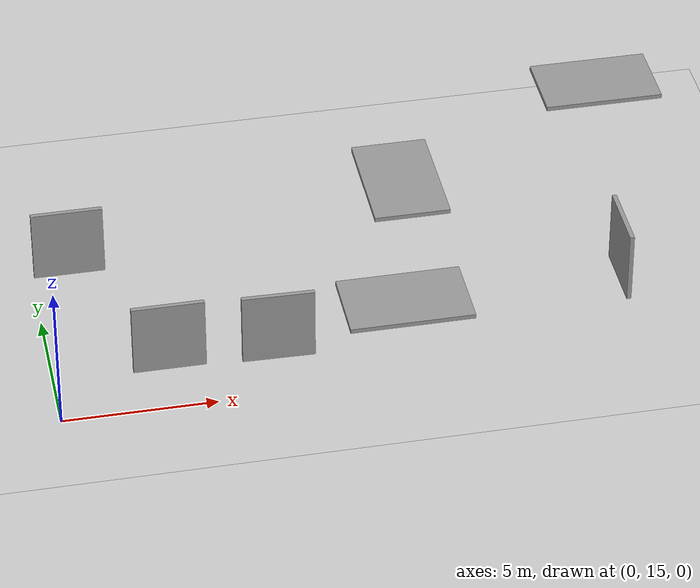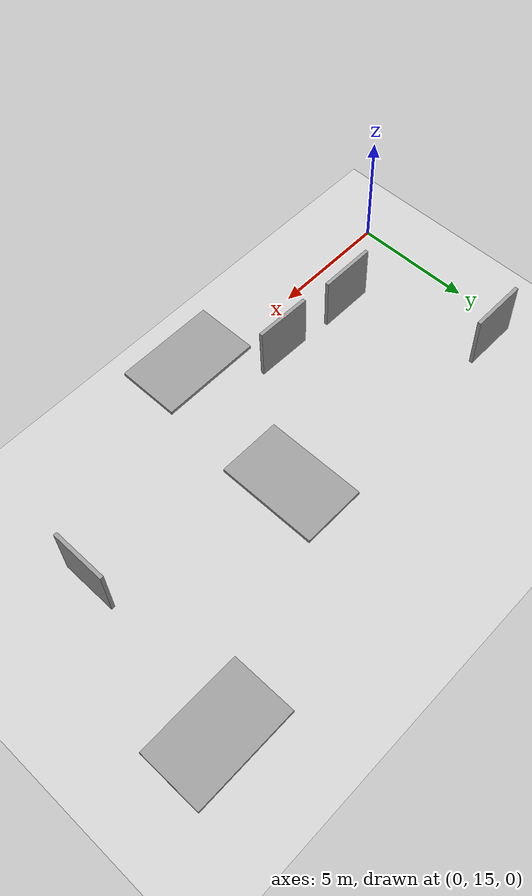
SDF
<sdf version="1.6">
 <world name="default">
  <model name="ground_plane">
   <pose>15 45 0 0 -0 0</pose>
   <static>1</static>
   <link name="link">
    <collision name="collision">
     <geometry><plane><normal>0 0 1</normal><size>100 100</size></plane></geometry>
     <surface><friction><ode><mu>100</mu><mu2>50</mu2></ode></friction></surface>
    </collision>
    <visual name="visual">
     <cast_shadows>0</cast_shadows>
     <geometry><plane><normal>0 0 1</normal><size>30 120</size></plane></geometry>
     <material>
      <script><uri>file://media/materials/scripts/gazebo.material</uri><name>Gazebo/Grey</name></script>
     </material>
    </visual>
   </link>
  </model>
  <model name="barrier_clone_clone_0">
   <link name="link_0">
    <inertial>
     <mass>1</mass>
     <inertia>
      <ixx>0.166667</ixx>
      <ixy>0</ixy>
      <ixz>0</ixz>
      <iyy>0.166667</iyy>
      <iyz>0</iyz>
      <izz>0.166667</izz>
     </inertia>
    </inertial>
    <pose>1e-06 1e-06 0 0 -0 0</pose>
    <visual name="visual">
     <pose>0 0 0.75 0 -0 0</pose>
     <geometry><box><size>2.35 0.15 2.5</size></box></geometry>
     <material>
      <lighting>1</lighting>
      <script><uri>file://media/materials/scripts/gazebo.material</uri><name>Gazebo/Grey</name></script>
      <shader type="pixel"><normal_map>__default__</normal_map></shader>
      <ambient>0.3 0.3 0.3 1</ambient>
      <diffuse>0.7 0.7 0.7 1</diffuse>
      <specular>0.01 0.01 0.01 1</specular>
      <emissive>0 0 0 1</emissive>
     </material>
    </visual>
    <collision name="collision">
     <pose>0 0 0.75 0 -0 0</pose>
     <geometry><box><size>2.35 0.15 2.5</size></box></geometry>
     <surface>
      <friction>
       <ode><mu>1</mu><mu2>1</mu2><fdir1>0 0 0</fdir1><slip1>0</slip1><slip2>0</slip2></ode>
       <torsional>
        <coefficient>1</coefficient>
        <patch_radius>0</patch_radius>
        <surface_radius>0</surface_radius>
        <use_patch_radius>1</use_patch_radius>
        <ode><slip>0</slip></ode>
       </torsional>
      </friction>
      <bounce><restitution_coefficient>0</restitution_coefficient><threshold>1e+06</threshold></bounce>
      <contact>
       <collide_without_contact>0</collide_without_contact>
       <collide_without_contact_bitmask>1</collide_without_contact_bitmask>
       <collide_bitmask>1</collide_bitmask>
       <ode>
        <soft_cfm>0</soft_cfm>
        <soft_erp>0.2</soft_erp>
        <kp>1e+13</kp>
        <kd>1</kd>
        <max_vel>0.01</max_vel>
        <min_depth>0</min_depth>
       </ode>
       <bullet>
        <split_impulse>1</split_impulse>
        <split_impulse_penetration_threshold>-0.01</split_impulse_penetration_threshold>
        <soft_cfm>0</soft_cfm>
        <soft_erp>0.2</soft_erp>
        <kp>1e+13</kp>
        <kd>1</kd>
       </bullet>
      </contact>
     </surface>
    </collision>
   </link>
   <static>0</static>
   <pose>19.0036 18.7468 0.5 -1e-06 -0 1.56999</pose>
  </model>
  <model name="barrier_0_clone">
   <link name="link_0">
    <inertial>
     <mass>1</mass>
     <inertia>
      <ixx>0.166667</ixx>
      <ixy>0</ixy>
      <ixz>0</ixz>
      <iyy>0.166667</iyy>
      <iyz>0</iyz>
      <izz>0.166667</izz>
     </inertia>
    </inertial>
    <pose>1e-06 1e-06 0 0 -0 0</pose>
    <visual name="visual">
     <pose>0 0 0.75 0 -0 0</pose>
     <geometry><box><size>2.35 0.15 2.5</size></box></geometry>
     <material>
      <lighting>1</lighting>
      <script><uri>file://media/materials/scripts/gazebo.material</uri><name>Gazebo/Grey</name></script>
      <shader type="pixel"><normal_map>__default__</normal_map></shader>
      <ambient>0.3 0.3 0.3 1</ambient>
      <diffuse>0.7 0.7 0.7 1</diffuse>
      <specular>0.01 0.01 0.01 1</specular>
      <emissive>0 0 0 1</emissive>
     </material>
    </visual>
    <collision name="collision">
     <pose>0 0 0.75 0 -0 0</pose>
     <geometry><box><size>2.35 0.15 2.5</size></box></geometry>
     <surface>
      <friction>
       <ode><mu>1</mu><mu2>1</mu2><fdir1>0 0 0</fdir1><slip1>0</slip1><slip2>0</slip2></ode>
       <torsional>
        <coefficient>1</coefficient>
        <patch_radius>0</patch_radius>
        <surface_radius>0</surface_radius>
        <use_patch_radius>1</use_patch_radius>
        <ode><slip>0</slip></ode>
       </torsional>
      </friction>
      <bounce><restitution_coefficient>0</restitution_coefficient><threshold>1e+06</threshold></bounce>
      <contact>
       <collide_without_contact>0</collide_without_contact>
       <collide_without_contact_bitmask>1</collide_without_contact_bitmask>
       <collide_bitmask>1</collide_bitmask>
       <ode>
        <soft_cfm>0</soft_cfm>
        <soft_erp>0.2</soft_erp>
        <kp>1e+13</kp>
        <kd>1</kd>
        <max_vel>0.01</max_vel>
        <min_depth>0</min_depth>
       </ode>
       <bullet>
        <split_impulse>1</split_impulse>
        <split_impulse_penetration_threshold>-0.01</split_impulse_penetration_threshold>
        <soft_cfm>0</soft_cfm>
        <soft_erp>0.2</soft_erp>
        <kp>1e+13</kp>
        <kd>1</kd>
       </bullet>
      </contact>
     </surface>
    </collision>
   </link>
   <static>0</static>
   <pose>7.25305 16.8512 0.499957 2e-06 -3.7e-05 -0.023283</pose>
  </model>
  <model name="barrier_0_clone_0">
   <link name="link_0">
    <inertial>
     <mass>1</mass>
     <inertia>
      <ixx>0.166667</ixx>
      <ixy>0</ixy>
      <ixz>0</ixz>
      <iyy>0.166667</iyy>
      <iyz>0</iyz>
      <izz>0.166667</izz>
     </inertia>
    </inertial>
    <pose>1e-06 1e-06 0 0 -0 0</pose>
    <visual name="visual">
     <pose>0 0 0.75 0 -0 0</pose>
     <geometry><box><size>2.35 0.15 2.5</size></box></geometry>
     <material>
      <lighting>1</lighting>
      <script><uri>file://media/materials/scripts/gazebo.material</uri><name>Gazebo/Grey</name></script>
      <shader type="pixel"><normal_map>__default__</normal_map></shader>
      <ambient>0.3 0.3 0.3 1</ambient>
      <diffuse>0.7 0.7 0.7 1</diffuse>
      <specular>0.01 0.01 0.01 1</specular>
      <emissive>0 0 0 1</emissive>
     </material>
    </visual>
    <collision name="collision">
     <pose>0 0 0.75 0 -0 0</pose>
     <geometry><box><size>2.35 0.15 2.5</size></box></geometry>
     <surface>
      <friction>
       <ode><mu>1</mu><mu2>1</mu2><fdir1>0 0 0</fdir1><slip1>0</slip1><slip2>0</slip2></ode>
       <torsional>
        <coefficient>1</coefficient>
        <patch_radius>0</patch_radius>
        <surface_radius>0</surface_radius>
        <use_patch_radius>1</use_patch_radius>
        <ode><slip>0</slip></ode>
       </torsional>
      </friction>
      <bounce><restitution_coefficient>0</restitution_coefficient><threshold>1e+06</threshold></bounce>
      <contact>
       <collide_without_contact>0</collide_without_contact>
       <collide_without_contact_bitmask>1</collide_without_contact_bitmask>
       <collide_bitmask>1</collide_bitmask>
       <ode>
        <soft_cfm>0</soft_cfm>
        <soft_erp>0.2</soft_erp>
        <kp>1e+13</kp>
        <kd>1</kd>
        <max_vel>0.01</max_vel>
        <min_depth>0</min_depth>
       </ode>
       <bullet>
        <split_impulse>1</split_impulse>
        <split_impulse_penetration_threshold>-0.01</split_impulse_penetration_threshold>
        <soft_cfm>0</soft_cfm>
        <soft_erp>0.2</soft_erp>
        <kp>1e+13</kp>
        <kd>1</kd>
       </bullet>
      </contact>
     </surface>
    </collision>
   </link>
   <static>0</static>
   <pose>3.7516 17.0035 0.500003 -3.7e-05 -0 -0.000793</pose>
  </model>
  <model name="barrier_0_clone_1">
   <link name="link_0">
    <inertial>
     <mass>1</mass>
     <inertia>
      <ixx>0.166667</ixx>
      <ixy>0</ixy>
      <ixz>0</ixz>
      <iyy>0.166667</iyy>
      <iyz>0</iyz>
      <izz>0.166667</izz>
     </inertia>
    </inertial>
    <pose>1e-06 1e-06 0 0 -0 0</pose>
    <visual name="visual">
     <pose>0 0 0.75 0 -0 0</pose>
     <geometry><box><size>2.35 0.15 2.5</size></box></geometry>
     <material>
      <lighting>1</lighting>
      <script><uri>file://media/materials/scripts/gazebo.material</uri><name>Gazebo/Grey</name></script>
      <shader type="pixel"><normal_map>__default__</normal_map></shader>
      <ambient>0.3 0.3 0.3 1</ambient>
      <diffuse>0.7 0.7 0.7 1</diffuse>
      <specular>0.01 0.01 0.01 1</specular>
      <emissive>0 0 0 1</emissive>
     </material>
    </visual>
    <collision name="collision">
     <pose>0 0 0.75 0 -0 0</pose>
     <geometry><box><size>2.35 0.15 2.5</size></box></geometry>
     <surface>
      <friction>
       <ode><mu>1</mu><mu2>1</mu2><fdir1>0 0 0</fdir1><slip1>0</slip1><slip2>0</slip2></ode>
       <torsional>
        <coefficient>1</coefficient>
        <patch_radius>0</patch_radius>
        <surface_radius>0</surface_radius>
        <use_patch_radius>1</use_patch_radius>
        <ode><slip>0</slip></ode>
       </torsional>
      </friction>
      <bounce><restitution_coefficient>0</restitution_coefficient><threshold>1e+06</threshold></bounce>
      <contact>
       <collide_without_contact>0</collide_without_contact>
       <collide_without_contact_bitmask>1</collide_without_contact_bitmask>
       <collide_bitmask>1</collide_bitmask>
       <ode>
        <soft_cfm>0</soft_cfm>
        <soft_erp>0.2</soft_erp>
        <kp>1e+13</kp>
        <kd>1</kd>
        <max_vel>0.01</max_vel>
        <min_depth>0</min_depth>
       </ode>
       <bullet>
        <split_impulse>1</split_impulse>
        <split_impulse_penetration_threshold>-0.01</split_impulse_penetration_threshold>
        <soft_cfm>0</soft_cfm>
        <soft_erp>0.2</soft_erp>
        <kp>1e+13</kp>
        <kd>1</kd>
       </bullet>
      </contact>
     </surface>
    </collision>
   </link>
   <static>0</static>
   <pose>1.25596 22.4911 0.5 -1.2e-05 -1e-06 -0.000752</pose>
  </model>
  <model name="proof_clone">
   <link name="link_0">
    <inertial>
     <mass>1</mass>
     <inertia>
      <ixx>0.166667</ixx>
      <ixy>0</ixy>
      <ixz>0</ixz>
      <iyy>0.166667</iyy>
      <iyz>0</iyz>
      <izz>0.166667</izz>
     </inertia>
    </inertial>
    <pose>-0 -1e-06 0 0 -0 0</pose>
    <visual name="visual">
     <pose>0 0 2 0 -0 0</pose>
     <geometry><box><size>4 2.5 0.15</size></box></geometry>
     <material>
      <lighting>1</lighting>
      <script><uri>file://media/materials/scripts/gazebo.material</uri><name>Gazebo/Grey</name></script>
      <shader type="pixel"><normal_map>__default__</normal_map></shader>
      <ambient>0.3 0.3 0.3 1</ambient>
      <diffuse>0.7 0.7 0.7 1</diffuse>
      <specular>0.01 0.01 0.01 1</specular>
      <emissive>0 0 0 1</emissive>
     </material>
    </visual>
    <collision name="collision">
     <pose>0 0 2 0 -0 0</pose>
     <geometry><box><size>4 2.5 0.15</size></box></geometry>
     <surface>
      <friction>
       <ode><mu>1</mu><mu2>1</mu2><fdir1>0 0 0</fdir1><slip1>0</slip1><slip2>0</slip2></ode>
       <torsional>
        <coefficient>1</coefficient>
        <patch_radius>0</patch_radius>
        <surface_radius>0</surface_radius>
        <use_patch_radius>1</use_patch_radius>
        <ode><slip>0</slip></ode>
       </torsional>
      </friction>
      <bounce><restitution_coefficient>0</restitution_coefficient><threshold>1e+06</threshold></bounce>
      <contact>
       <collide_without_contact>0</collide_without_contact>
       <collide_without_contact_bitmask>1</collide_without_contact_bitmask>
       <collide_bitmask>1</collide_bitmask>
       <ode>
        <soft_cfm>0</soft_cfm>
        <soft_erp>0.2</soft_erp>
        <kp>1e+13</kp>
        <kd>1</kd>
        <max_vel>0.01</max_vel>
        <min_depth>0</min_depth>
       </ode>
       <bullet>
        <split_impulse>1</split_impulse>
        <split_impulse_penetration_threshold>-0.01</split_impulse_penetration_threshold>
        <soft_cfm>0</soft_cfm>
        <soft_erp>0.2</soft_erp>
        <kp>1e+13</kp>
        <kd>1</kd>
       </bullet>
      </contact>
     </surface>
    </collision>
   </link>
   <static>0</static>
   <pose>11.1318 15.7449 0.574999 0 -0 -0.000125</pose>
  </model>
  <model name="proof_clone_0">
   <link name="link_0">
    <inertial>
     <mass>1</mass>
     <inertia>
      <ixx>0.166667</ixx>
      <ixy>0</ixy>
      <ixz>0</ixz>
      <iyy>0.166667</iyy>
      <iyz>0</iyz>
      <izz>0.166667</izz>
     </inertia>
    </inertial>
    <pose>-0 -1e-06 0 0 -0 0</pose>
    <visual name="visual">
     <pose>0 0 2 0 -0 0</pose>
     <geometry><box><size>4 2.5 0.15</size></box></geometry>
     <material>
      <lighting>1</lighting>
      <script><uri>file://media/materials/scripts/gazebo.material</uri><name>Gazebo/Grey</name></script>
      <shader type="pixel"><normal_map>__default__</normal_map></shader>
      <ambient>0.3 0.3 0.3 1</ambient>
      <diffuse>0.7 0.7 0.7 1</diffuse>
      <specular>0.01 0.01 0.01 1</specular>
      <emissive>0 0 0 1</emissive>
     </material>
    </visual>
    <collision name="collision">
     <pose>0 0 2 0 -0 0</pose>
     <geometry><box><size>4 2.5 0.15</size></box></geometry>
     <surface>
      <friction>
       <ode><mu>1</mu><mu2>1</mu2><fdir1>0 0 0</fdir1><slip1>0</slip1><slip2>0</slip2></ode>
       <torsional>
        <coefficient>1</coefficient>
        <patch_radius>0</patch_radius>
        <surface_radius>0</surface_radius>
        <use_patch_radius>1</use_patch_radius>
        <ode><slip>0</slip></ode>
       </torsional>
      </friction>
      <bounce><restitution_coefficient>0</restitution_coefficient><threshold>1e+06</threshold></bounce>
      <contact>
       <collide_without_contact>0</collide_without_contact>
       <collide_without_contact_bitmask>1</collide_without_contact_bitmask>
       <collide_bitmask>1</collide_bitmask>
       <ode>
        <soft_cfm>0</soft_cfm>
        <soft_erp>0.2</soft_erp>
        <kp>1e+13</kp>
        <kd>1</kd>
        <max_vel>0.01</max_vel>
        <min_depth>0</min_depth>
       </ode>
       <bullet>
        <split_impulse>1</split_impulse>
        <split_impulse_penetration_threshold>-0.01</split_impulse_penetration_threshold>
        <soft_cfm>0</soft_cfm>
        <soft_erp>0.2</soft_erp>
        <kp>1e+13</kp>
        <kd>1</kd>
       </bullet>
      </contact>
     </surface>
    </collision>
   </link>
   <static>0</static>
   <pose>19.9726 26.2318 0.574997 0 1e-06 0.000367</pose>
  </model>
  <model name="proof_clone_1">
   <link name="link_0">
    <inertial>
     <mass>1</mass>
     <inertia>
      <ixx>0.166667</ixx>
      <ixy>0</ixy>
      <ixz>0</ixz>
      <iyy>0.166667</iyy>
      <iyz>0</iyz>
      <izz>0.166667</izz>
     </inertia>
    </inertial>
    <pose>-0 -1e-06 0 0 -0 0</pose>
    <visual name="visual">
     <pose>0 0 2 0 -0 0</pose>
     <geometry><box><size>4 2.5 0.15</size></box></geometry>
     <material>
      <lighting>1</lighting>
      <script><uri>file://media/materials/scripts/gazebo.material</uri><name>Gazebo/Grey</name></script>
      <shader type="pixel"><normal_map>__default__</normal_map></shader>
      <ambient>0.3 0.3 0.3 1</ambient>
      <diffuse>0.7 0.7 0.7 1</diffuse>
      <specular>0.01 0.01 0.01 1</specular>
      <emissive>0 0 0 1</emissive>
     </material>
    </visual>
    <collision name="collision">
     <pose>0 0 2 0 -0 0</pose>
     <geometry><box><size>4 2.5 0.15</size></box></geometry>
     <surface>
      <friction>
       <ode><mu>1</mu><mu2>1</mu2><fdir1>0 0 0</fdir1><slip1>0</slip1><slip2>0</slip2></ode>
       <torsional>
        <coefficient>1</coefficient>
        <patch_radius>0</patch_radius>
        <surface_radius>0</surface_radius>
        <use_patch_radius>1</use_patch_radius>
        <ode><slip>0</slip></ode>
       </torsional>
      </friction>
      <bounce><restitution_coefficient>0</restitution_coefficient><threshold>1e+06</threshold></bounce>
      <contact>
       <collide_without_contact>0</collide_without_contact>
       <collide_without_contact_bitmask>1</collide_without_contact_bitmask>
       <collide_bitmask>1</collide_bitmask>
       <ode>
        <soft_cfm>0</soft_cfm>
        <soft_erp>0.2</soft_erp>
        <kp>1e+13</kp>
        <kd>1</kd>
        <max_vel>0.01</max_vel>
        <min_depth>0</min_depth>
       </ode>
       <bullet>
        <split_impulse>1</split_impulse>
        <split_impulse_penetration_threshold>-0.01</split_impulse_penetration_threshold>
        <soft_cfm>0</soft_cfm>
        <soft_erp>0.2</soft_erp>
        <kp>1e+13</kp>
        <kd>1</kd>
       </bullet>
      </contact>
     </surface>
    </collision>
   </link>
   <static>0</static>
   <pose>12.2745 21.9994 0.575 -1e-06 -0 1.57073</pose>
  </model>
 </world>
</sdf>
